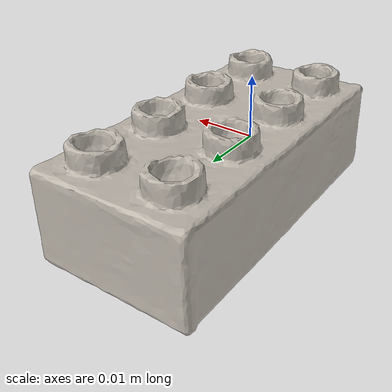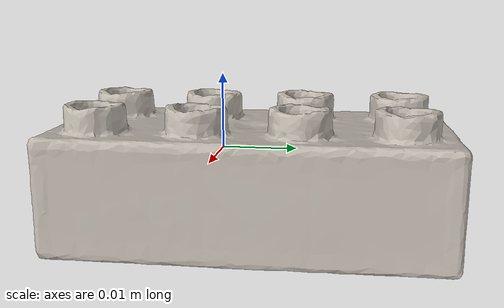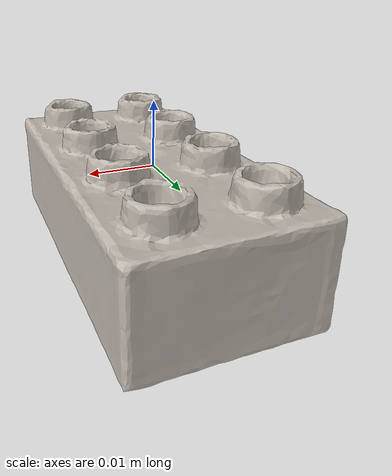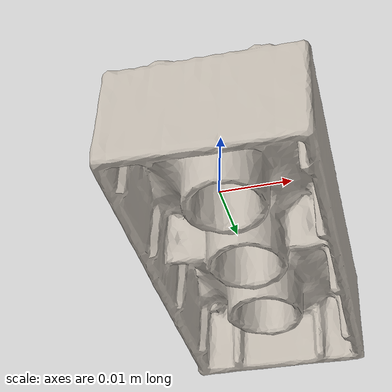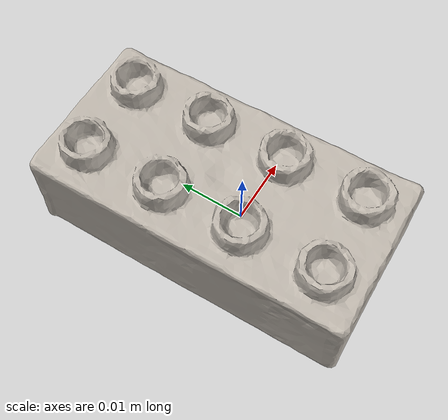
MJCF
<mujoco model="bread">
  <asset>
    <mesh file="nontextured.stl" name="obj_mesh" scale="0.8 0.8 0.8"/>
    <texture file="../../../../../textures/bread.png" type="2d" name="tex-bread" />
    <material name="bread" reflectance="0.7" texrepeat="15 15" texture="tex-bread" texuniform="true"/>
  </asset>
  <worldbody>
    <body>
      <body name="collision">
        <geom pos="0.013394999999999999 0.0226845 -0.0113385" mesh="obj_mesh" type="mesh" solimp="0.998 0.998 0.001" solref="0.001 1" density="50" friction="0.95 0.3 0.1"  material="bread" group="1" condim="4"/>
      </body>
      <body name="visual">
        <geom pos="0.013394999999999999 0.0226845 -0.0113385" mesh="obj_mesh" type="mesh" material="bread"  conaffinity="0" contype="0"  group="0" mass="0.0001"/>
        <geom pos="0.013394999999999999 0.0226845 -0.0113385" mesh="obj_mesh" type="mesh" material="bread"  conaffinity="0" contype="0"  group="1" mass="0.0001"/>
      </body>
      <site rgba="0 0 0 0" size="0.005" pos="0 0 -0.0118585" name="bottom_site"/>
      <site rgba="0 0 0 0" size="0.005" pos="0 0 0.0118585" name="top_site"/>
      <site rgba="0 0 0 0" size="0.005" pos="0.016947999999999998 0.0324105 0.0118585" name="horizontal_radius_site"/>
    </body>
  </worldbody>
</mujoco>
